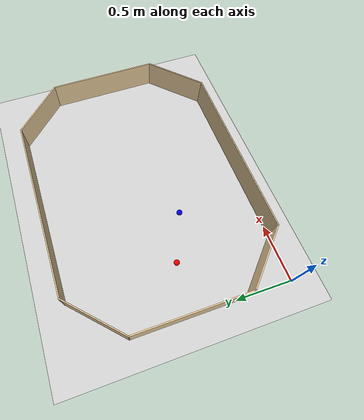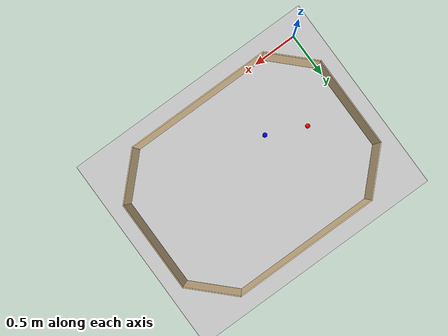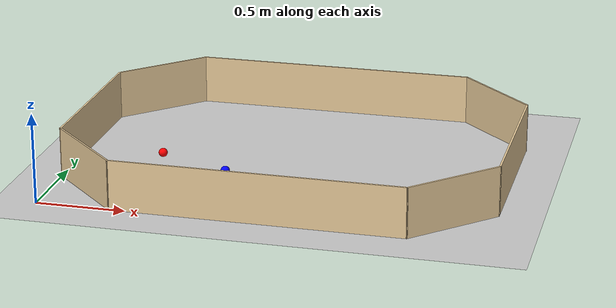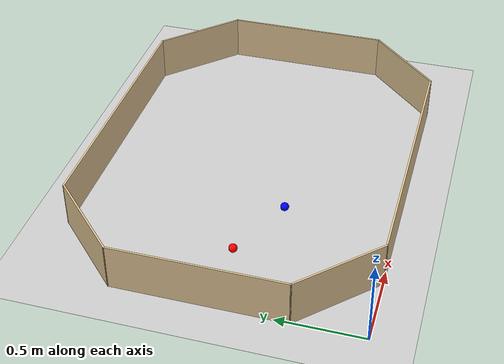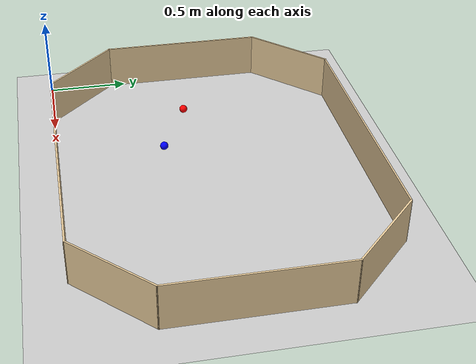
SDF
<?xml version="1.0" ?>
<sdf version="1.4">
  <world name="default">
    <scene>
      <ambient>0.5 0.5 0.5 1.0</ambient>
      <shadows>0</shadows>
    </scene>
    <include>
      <uri>model://ground_plane</uri>
    </include>
    <include>
      <uri>model://sun</uri>
    </include>

    <model name='sphere_blue'>
      <static>0</static>
      <link name='body'>
        <inertial>
          <mass>0.06</mass>
          <inertia>
            <ixx>0.001</ixx>
            <iyy>0.001</iyy>
            <izz>0.001</izz>
            <ixy>0</ixy>
            <ixz>0</ixz>
            <iyz>0</iyz>
          </inertia>
          <pose>0 0 0 0 -0 0</pose>
        </inertial>
        <visual name='vis'>
          <geometry>
            <mesh>
              <uri>model://sphere_blue/sphere.dae</uri>
            </mesh>
          </geometry>
        </visual>
        <collision name='col'>
          <pose>0 0 0.025 0 -0 0</pose>
          <geometry>
            <box>
              <size>0.05 0.05 0.05</size>
            </box>
          </geometry>
          <surface>
            <friction>
              <ode>
                <mu>0.1</mu>
                <mu2>0.1</mu2>
                <slip1>0.9</slip1>
                <slip2>0.9</slip2>
              </ode>
              <torsional>
                <ode/>
              </torsional>
            </friction>
            <contact>
              <ode/>
            </contact>
            <bounce/>
          </surface>
          <max_contacts>10</max_contacts>
        </collision>
        <self_collide>0</self_collide>
        <enable_wind>0</enable_wind>
        <kinematic>0</kinematic>
      </link>
      <pose>0.860112 0.660569 0 0 -0 0</pose>
    </model>
    <model name='sphere_red'>
      <static>0</static>
      <link name='body'>
        <inertial>
          <mass>0.06</mass>
          <inertia>
            <ixx>0.001</ixx>
            <iyy>0.001</iyy>
            <izz>0.001</izz>
            <ixy>0</ixy>
            <ixz>0</ixz>
            <iyz>0</iyz>
          </inertia>
          <pose>0 0 0 0 -0 0</pose>
        </inertial>
        <visual name='vis'>
          <geometry>
            <mesh>
              <uri>model://sphere_red/sphere.dae</uri>
            </mesh>
          </geometry>
        </visual>
        <collision name='col'>
          <pose>0 0 0.025 0 -0 0</pose>
          <geometry>
            <box>
              <size>0.05 0.05 0.05</size>
            </box>
          </geometry>
          <surface>
            <friction>
              <ode>
                <mu>0.1</mu>
                <mu2>0.1</mu2>
                <slip1>0.9</slip1>
                <slip2>0.9</slip2>
              </ode>
              <torsional>
                <ode/>
              </torsional>
            </friction>
            <contact>
              <ode/>
            </contact>
            <bounce/>
          </surface>
          <max_contacts>10</max_contacts>
        </collision>
        <self_collide>0</self_collide>
        <enable_wind>0</enable_wind>
        <kinematic>0</kinematic>
      </link>
      <pose>0.44185 0.84841 0 0 -0 0</pose>
    </model>

    <model name='small_outer_box'>
    <pose frame=''>1.21 0.91 0 0 -0 0</pose>
    <link name='Wall_0'>
      <collision name='Wall_0_Collision'>
        <geometry>
          <box>
            <size>0.589828 0.01 0.28</size>
          </box>
        </geometry>
        <pose frame=''>0 0 0.14 0 -0 0</pose>
      </collision>
      <visual name='Wall_0_Visual'>
        <pose frame=''>0 0 0.14 0 -0 0</pose>
        <geometry>
          <box>
            <size>0.589828 0.01 0.28</size>
          </box>
        </geometry>
        <material>
          <script>
            <uri>file://media/materials/scripts/gazebo.material</uri>
            <name>Gazebo/Grey</name>
          </script>
          <ambient>0.921569 0.807843 0.615686 1</ambient>
        </material>
        <meta>
          <layer>0</layer>
        </meta>
      </visual>
      <pose frame=''>-1.005 -0.705 0 0 0 -0.785398</pose>
    </link>
    <link name='Wall_10'>
      <collision name='Wall_10_Collision'>
        <geometry>
          <box>
            <size>1.61 0.01 0.28</size>
          </box>
        </geometry>
        <pose frame=''>0 0 0.14 0 -0 0</pose>
      </collision>
      <visual name='Wall_10_Visual'>
        <pose frame=''>0 0 0.14 0 -0 0</pose>
        <geometry>
          <box>
            <size>1.61 0.01 0.28</size>
          </box>
        </geometry>
        <material>
          <script>
            <uri>file://media/materials/scripts/gazebo.material</uri>
            <name>Gazebo/Grey</name>
          </script>
          <ambient>0.921569 0.807843 0.615686 1</ambient>
        </material>
        <meta>
          <layer>0</layer>
        </meta>
      </visual>
      <pose frame=''>0 0.91 0 0 -0 3.14159</pose>
    </link>
    <link name='Wall_12'>
      <collision name='Wall_12_Collision'>
        <geometry>
          <box>
            <size>0.589828 0.01 0.28</size>
          </box>
        </geometry>
        <pose frame=''>0 0 0.14 0 -0 0</pose>
      </collision>
      <visual name='Wall_12_Visual'>
        <pose frame=''>0 0 0.14 0 -0 0</pose>
        <geometry>
          <box>
            <size>0.589828 0.01 0.28</size>
          </box>
        </geometry>
        <material>
          <script>
            <uri>file://media/materials/scripts/gazebo.material</uri>
            <name>Gazebo/Grey</name>
          </script>
          <ambient>0.921569 0.807843 0.615686 1</ambient>
        </material>
        <meta>
          <layer>0</layer>
        </meta>
      </visual>
      <pose frame=''>-1.005 0.705 0 0 0 -2.35619</pose>
    </link>
    <link name='Wall_14'>
      <collision name='Wall_14_Collision'>
        <geometry>
          <box>
            <size>1.01 0.01 0.28</size>
          </box>
        </geometry>
        <pose frame=''>0 0 0.14 0 -0 0</pose>
      </collision>
      <visual name='Wall_14_Visual'>
        <pose frame=''>0 0 0.14 0 -0 0</pose>
        <geometry>
          <box>
            <size>1.01 0.01 0.28</size>
          </box>
        </geometry>
        <material>
          <script>
            <uri>file://media/materials/scripts/gazebo.material</uri>
            <name>Gazebo/Grey</name>
          </script>
          <ambient>0.921569 0.807843 0.615686 1</ambient>
        </material>
        <meta>
          <layer>0</layer>
        </meta>
      </visual>
      <pose frame=''>-1.21 0 0 0 0 -1.5708</pose>
    </link>
    <link name='Wall_2'>
      <collision name='Wall_2_Collision'>
        <geometry>
          <box>
            <size>1.61 0.01 0.28</size>
          </box>
        </geometry>
        <pose frame=''>0 0 0.14 0 -0 0</pose>
      </collision>
      <visual name='Wall_2_Visual'>
        <pose frame=''>0 0 0.14 0 -0 0</pose>
        <geometry>
          <box>
            <size>1.61 0.01 0.28</size>
          </box>
        </geometry>
        <material>
          <script>
            <uri>file://media/materials/scripts/gazebo.material</uri>
            <name>Gazebo/Grey</name>
          </script>
          <ambient>0.921569 0.807843 0.615686 1</ambient>
        </material>
        <meta>
          <layer>0</layer>
        </meta>
      </visual>
      <pose frame=''>0 -0.91 0 0 -0 0</pose>
    </link>
    <link name='Wall_4'>
      <collision name='Wall_4_Collision'>
        <geometry>
          <box>
            <size>0.589828 0.01 0.28</size>
          </box>
        </geometry>
        <pose frame=''>0 0 0.14 0 -0 0</pose>
      </collision>
      <visual name='Wall_4_Visual'>
        <pose frame=''>0 0 0.14 0 -0 0</pose>
        <geometry>
          <box>
            <size>0.589828 0.01 0.28</size>
          </box>
        </geometry>
        <material>
          <script>
            <uri>file://media/materials/scripts/gazebo.material</uri>
            <name>Gazebo/Grey</name>
          </script>
          <ambient>0.921569 0.807843 0.615686 1</ambient>
        </material>
        <meta>
          <layer>0</layer>
        </meta>
      </visual>
      <pose frame=''>1.005 -0.705 0 0 -0 0.785398</pose>
    </link>
    <link name='Wall_6'>
      <collision name='Wall_6_Collision'>
        <geometry>
          <box>
            <size>1.01 0.01 0.28</size>
          </box>
        </geometry>
        <pose frame=''>0 0 0.14 0 -0 0</pose>
      </collision>
      <visual name='Wall_6_Visual'>
        <pose frame=''>0 0 0.14 0 -0 0</pose>
        <geometry>
          <box>
            <size>1.01 0.01 0.28</size>
          </box>
        </geometry>
        <material>
          <script>
            <uri>file://media/materials/scripts/gazebo.material</uri>
            <name>Gazebo/Grey</name>
          </script>
          <ambient>0.921569 0.807843 0.615686 1</ambient>
        </material>
        <meta>
          <layer>0</layer>
        </meta>
      </visual>
      <pose frame=''>1.21 0 0 0 -0 1.5708</pose>
    </link>
    <link name='Wall_8'>
      <collision name='Wall_8_Collision'>
        <geometry>
          <box>
            <size>0.589828 0.01 0.28</size>
          </box>
        </geometry>
        <pose frame=''>0 0 0.14 0 -0 0</pose>
      </collision>
      <visual name='Wall_8_Visual'>
        <pose frame=''>0 0 0.14 0 -0 0</pose>
        <geometry>
          <box>
            <size>0.589828 0.01 0.28</size>
          </box>
        </geometry>
        <material>
          <script>
            <uri>file://media/materials/scripts/gazebo.material</uri>
            <name>Gazebo/Grey</name>
          </script>
          <ambient>0.921569 0.807843 0.615686 1</ambient>
        </material>
        <meta>
          <layer>0</layer>
        </meta>
      </visual>
      <pose frame=''>1.005 0.705 0 0 -0 2.35619</pose>
    </link>
    <static>1</static>
  </model>

  </world>
</sdf>
